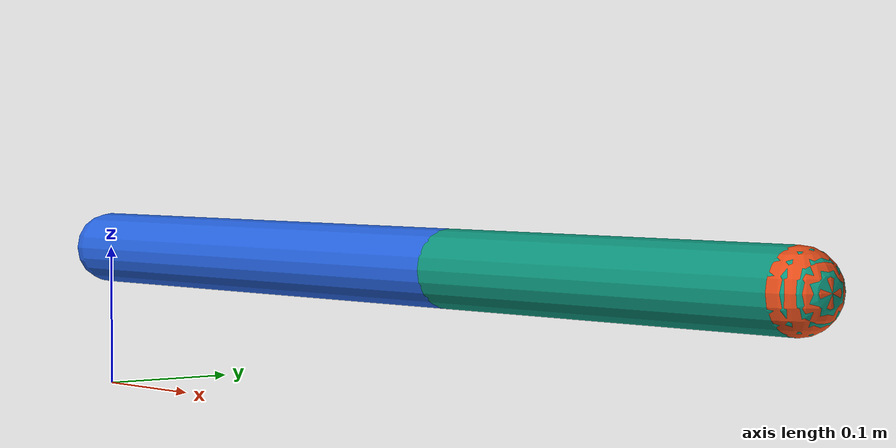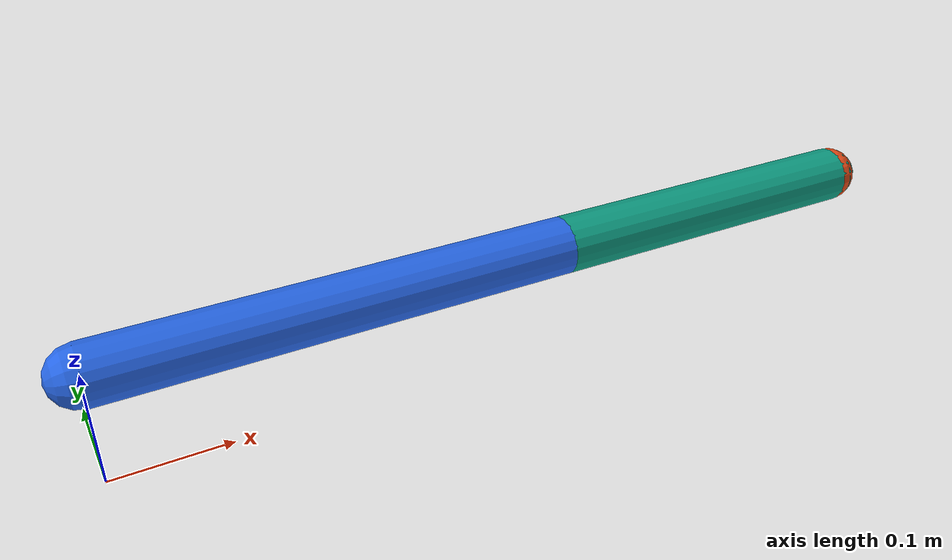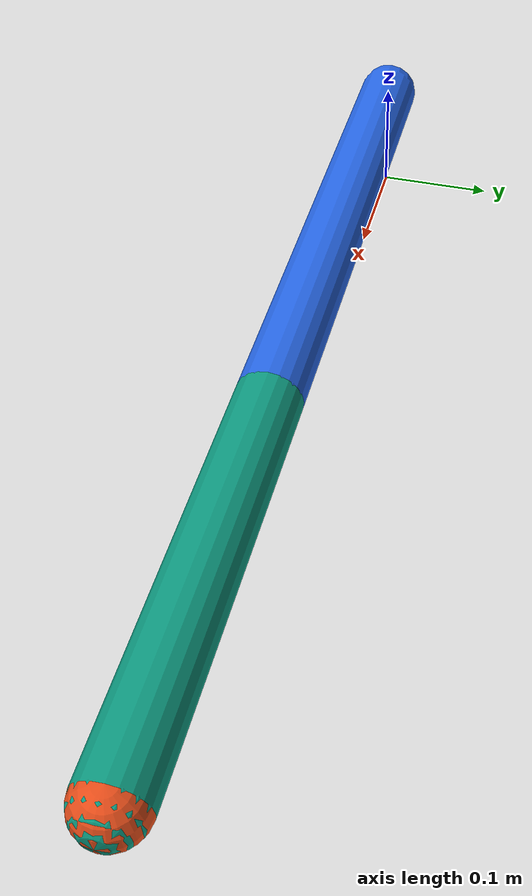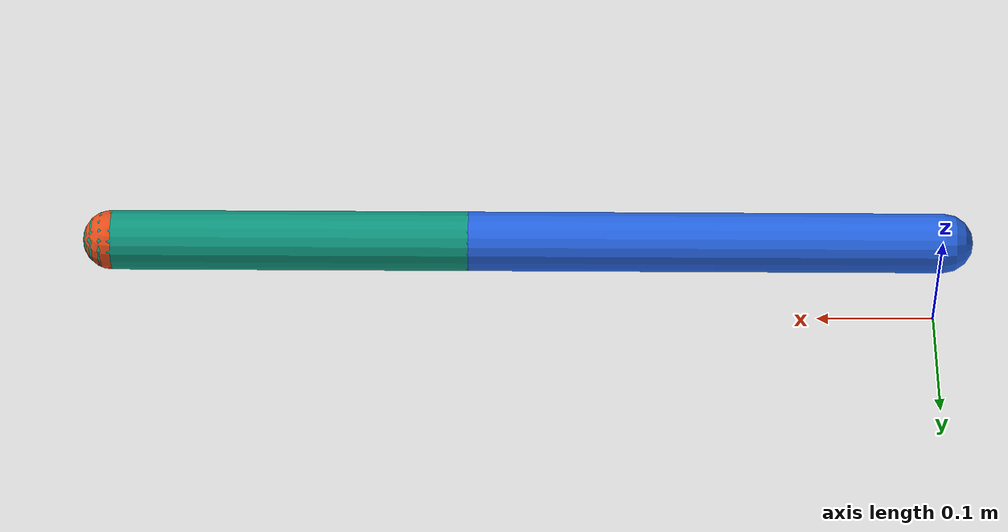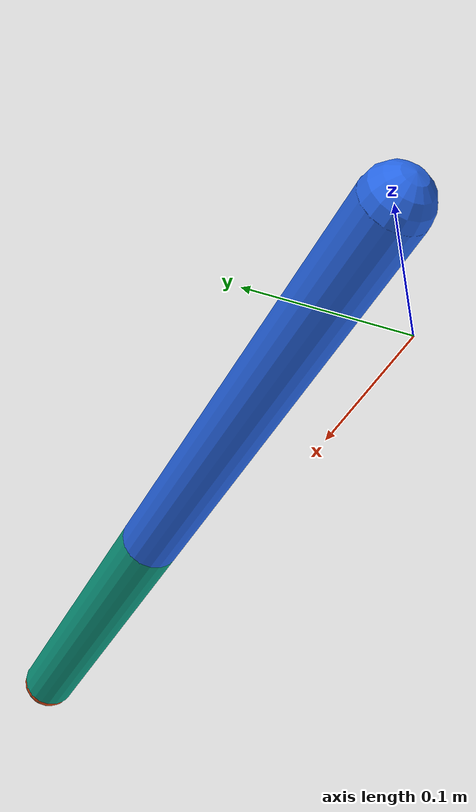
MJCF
<mujoco model="planar two-link arm">
  <compiler angle="radian"/>
  <option timestep="0.002" integrator="RK4" gravity="0 0 -9.81"/>
  <default>
    <joint type="hinge" axis="0 0 1" limited="false"/>
    <geom type="capsule" size="0.025" contype="0" conaffinity="0"/>
    <motor ctrllimited="true" ctrlrange="-0.25 0.25" gear="1"/>
  </default>
  <!-- Horizontal XY plane; rigid base; no contact or joint-angle limits in this lesson. -->
  <worldbody>
    <body name="upper_arm" pos="0 0 0.1">
      <joint name="shoulder" damping="0.1" armature="0.01"/>
      <geom name="link1" fromto="0 0 0 0.4 0 0" mass="1" rgba="0.15 0.4 0.9 1"/>
      <site name="base" size="0.015" pos="0 0 0"/>
      <body name="forearm" pos="0.4 0 0">
        <joint name="elbow" damping="0.08" armature="0.005"/>
        <geom name="link2" fromto="0 0 0 0.3 0 0" mass="0.7" rgba="0.05 0.6 0.5 1"/>
        <site name="elbow_point" size="0.015" pos="0 0 0"/>
        <site name="tip" size="0.025" pos="0.3 0 0" rgba="0.9 0.3 0.1 1"/>
      </body>
    </body>
  </worldbody>
  <actuator>
    <motor name="shoulder_motor" joint="shoulder"/>
    <motor name="elbow_motor" joint="elbow"/>
  </actuator>
</mujoco>
